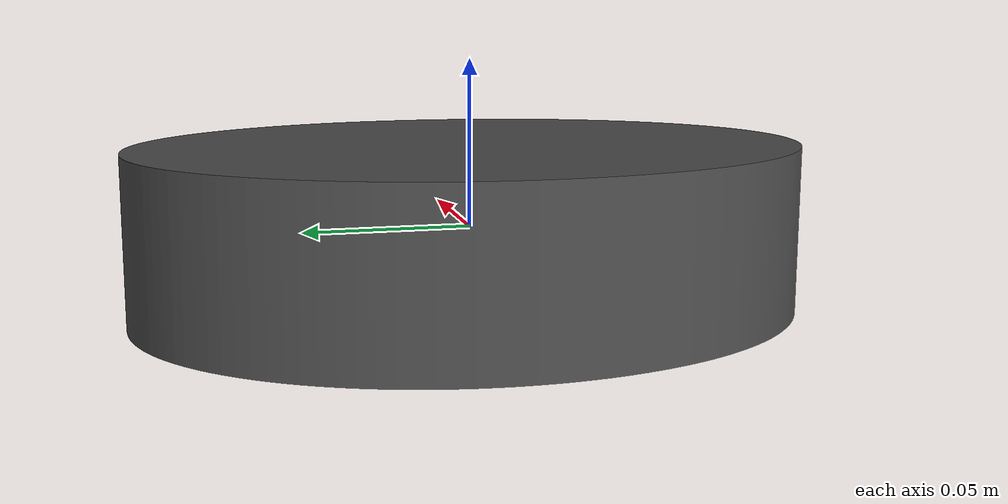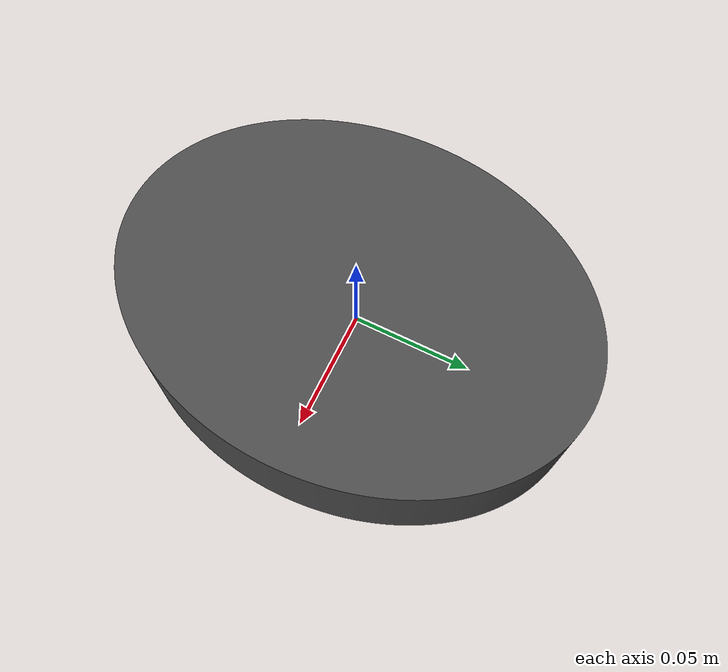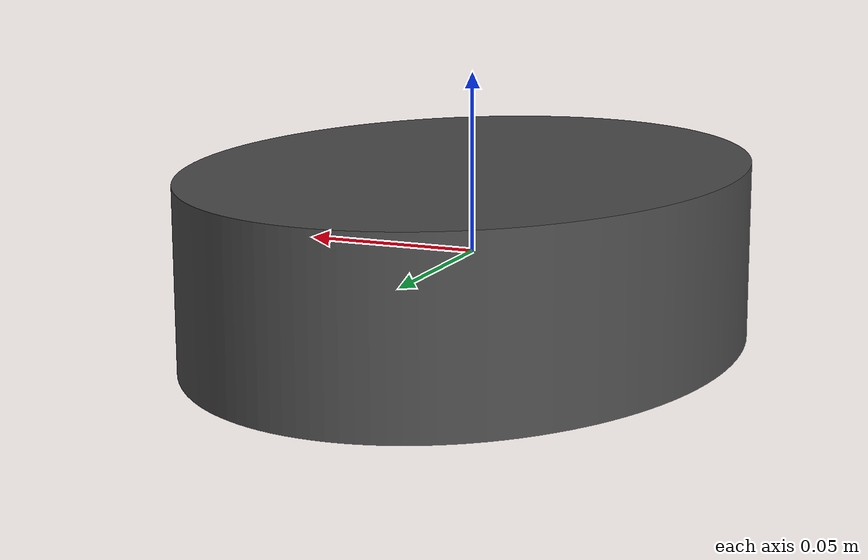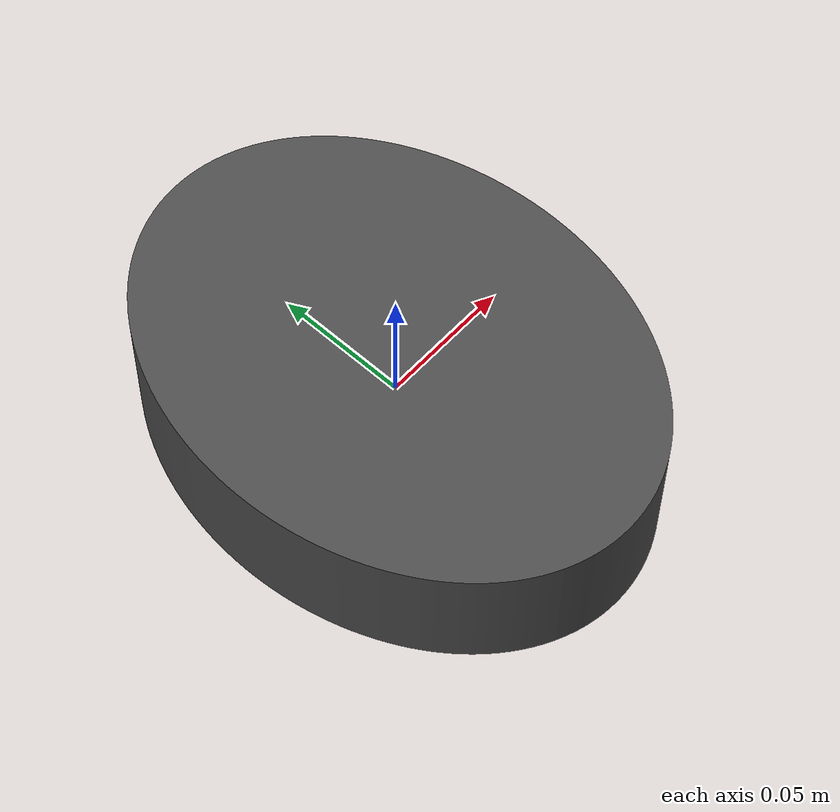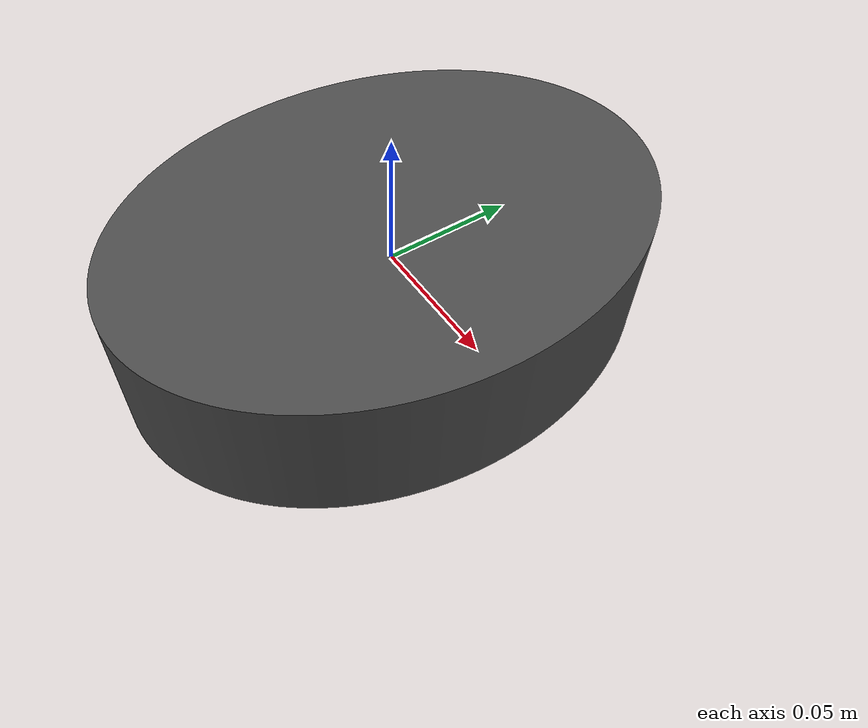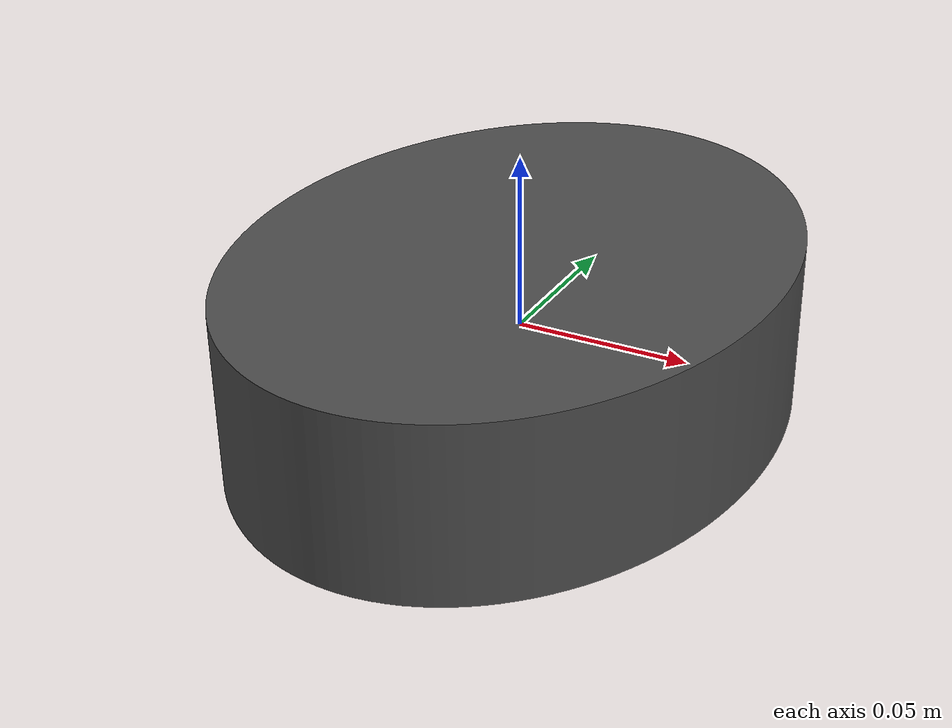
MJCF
<mujoco model="circle_2">
  <compiler angle="radian" />

  <asset>
    <mesh name="circle_2_visual_mesh" file="circle_2/textured.obj" />
    <mesh name="circle_2_collision_mesh" file="circle_2/textured.stl" />
    <material name="gray" rgba="0.3 0.3 0.3 1" />
  </asset>

  <worldbody>
    <body name="circle_2" pos="0 0 0" euler="0 0 0">
      <freejoint name="circle_2_joint" />
      <geom name="circle_2_visual_geom" type="mesh" mesh="circle_2_visual_mesh" material="gray" pos="-0.0 0.0 0.0" euler="0 0 0" contype="0" conaffinity="0" group="0" />
      <geom name="circle_2_collision_geom" type="mesh" mesh="circle_2_collision_mesh" pos="-0.0 0.0 0.0" euler="0 0 0" contype="1" conaffinity="1" group="3" />
      <inertial pos="0 0 0" euler="0 0 0" mass="0.411" diaginertia="0.001 0.001 0.001" />
    </body>
  </worldbody>
</mujoco>
